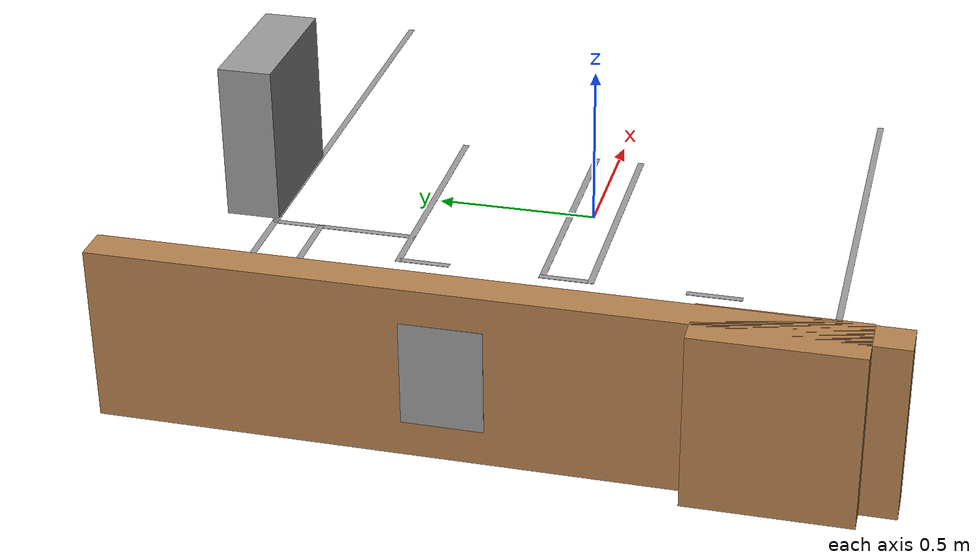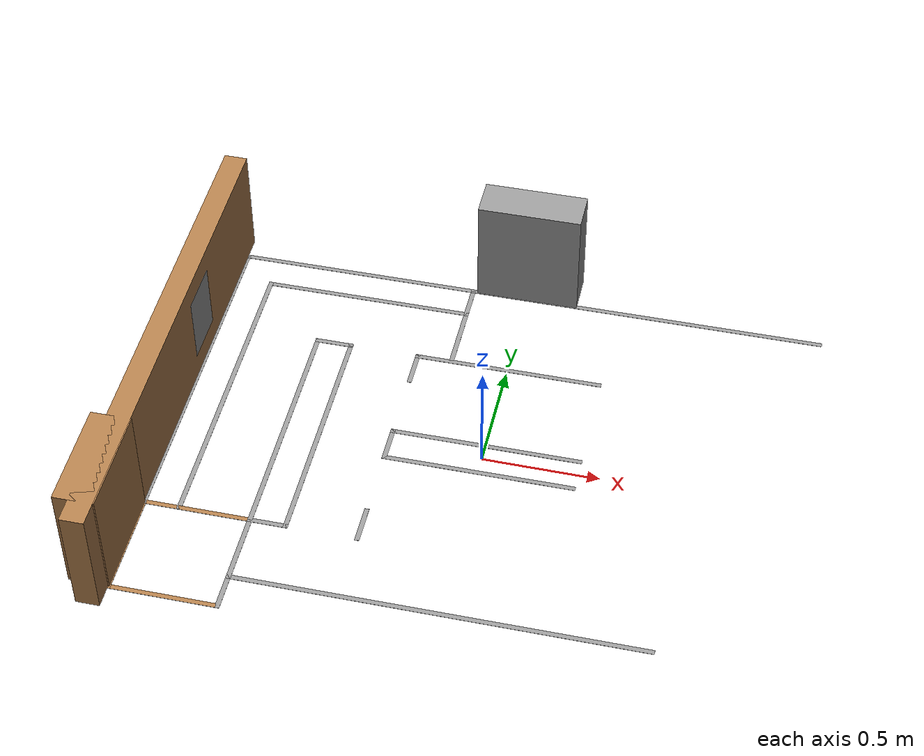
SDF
<sdf version="1.6">
 <model name="Map_2.0_0">
  <link name="Door_2">
   <pose>-1.38 -0.75 0 0 0 -1.56849</pose>
   <inertial>
    <mass>1</mass>
    <inertia><ixx>1</ixx><ixy>0</ixy><ixz>0</ixz><iyy>1</iyy><iyz>0</iyz><izz>1</izz></inertia>
   </inertial>
   <visual name="Door_2_Visual">
    <pose>0 0 0.25 0 -0 0</pose>
    <geometry><box><size>0.45 0.17 0.5</size></box></geometry>
    <material>
     <script><uri>file://media/materials/scripts/gazebo.material</uri><name>Gazebo/Wood</name></script>
     <shader type="pixel"><normal_map>__default__</normal_map></shader>
     <ambient>0 0 0 1</ambient>
     <diffuse>0.7 0.7 0.7 1</diffuse>
     <specular>0.01 0.01 0.01 1</specular>
     <emissive>0 0 0 1</emissive>
    </material>
   </visual>
   <collision name="Door_2_Collision">
    <pose>0 0 0.25 0 -0 0</pose>
    <geometry><box><size>0.45 0.17 0.5</size></box></geometry>
    <surface>
     <friction>
      <ode><mu>1</mu><mu2>1</mu2><fdir1>0 0 0</fdir1><slip1>0</slip1><slip2>0</slip2></ode>
      <torsional>
       <coefficient>1</coefficient>
       <patch_radius>0</patch_radius>
       <surface_radius>0</surface_radius>
       <use_patch_radius>1</use_patch_radius>
       <ode><slip>0</slip></ode>
      </torsional>
     </friction>
     <bounce><restitution_coefficient>0</restitution_coefficient><threshold>1e+06</threshold></bounce>
     <contact>
      <collide_without_contact>0</collide_without_contact>
      <collide_without_contact_bitmask>1</collide_without_contact_bitmask>
      <collide_bitmask>1</collide_bitmask>
      <ode>
       <soft_cfm>0</soft_cfm>
       <soft_erp>0.2</soft_erp>
       <kp>1e+13</kp>
       <kd>1</kd>
       <max_vel>0.01</max_vel>
       <min_depth>0</min_depth>
      </ode>
      <bullet>
       <split_impulse>1</split_impulse>
       <split_impulse_penetration_threshold>-0.01</split_impulse_penetration_threshold>
       <soft_cfm>0</soft_cfm>
       <soft_erp>0.2</soft_erp>
       <kp>1e+13</kp>
       <kd>1</kd>
      </bullet>
     </contact>
    </surface>
   </collision>
  </link>
  <link name="Door_5">
   <pose>-0.005 1.055 0 0 0 -3.13908</pose>
   <visual name="Door_5_Visual">
    <pose>0 0 0.25 0 -0 0</pose>
    <geometry><box><size>0.45 0.17 0.5</size></box></geometry>
    <material>
     <script><uri>file://media/materials/scripts/gazebo.material</uri><name>Gazebo/Grey</name></script>
     <shader type="pixel"/>
     <ambient>0.3 0.3 0.3 1</ambient>
     <diffuse>0.7 0.7 0.7 1</diffuse>
     <specular>0.01 0.01 0.01 1</specular>
     <emissive>0 0 0 1</emissive>
    </material>
   </visual>
   <collision name="Door_5_Collision">
    <pose>0 0 0.25 0 -0 0</pose>
    <geometry><box><size>0.45 0.17 0.5</size></box></geometry>
    <surface>
     <friction>
      <ode><mu>1</mu><mu2>1</mu2><fdir1>0 0 0</fdir1><slip1>0</slip1><slip2>0</slip2></ode>
      <torsional>
       <coefficient>1</coefficient>
       <patch_radius>0</patch_radius>
       <surface_radius>0</surface_radius>
       <use_patch_radius>1</use_patch_radius>
       <ode><slip>0</slip></ode>
      </torsional>
     </friction>
     <bounce><restitution_coefficient>0</restitution_coefficient><threshold>1e+06</threshold></bounce>
     <contact>
      <collide_without_contact>0</collide_without_contact>
      <collide_without_contact_bitmask>1</collide_without_contact_bitmask>
      <collide_bitmask>1</collide_bitmask>
      <ode>
       <soft_cfm>0</soft_cfm>
       <soft_erp>0.2</soft_erp>
       <kp>1e+13</kp>
       <kd>1</kd>
       <max_vel>0.01</max_vel>
       <min_depth>0</min_depth>
      </ode>
      <bullet>
       <split_impulse>1</split_impulse>
       <split_impulse_penetration_threshold>-0.01</split_impulse_penetration_threshold>
       <soft_cfm>0</soft_cfm>
       <soft_erp>0.2</soft_erp>
       <kp>1e+13</kp>
       <kd>1</kd>
      </bullet>
     </contact>
    </surface>
   </collision>
  </link>
  <link name="Wall_0">
   <pose>-1.075 -0.975 0 0 -0 0</pose>
   <visual name="Wall_0_Visual">
    <geometry><box><size>0.47 0.02 0.001</size></box></geometry>
    <material>
     <script><uri>file://media/materials/scripts/gazebo.material</uri><name>Gazebo/Wood</name></script>
     <ambient>1 0.835294 0 1</ambient>
     <shader type="pixel"/>
     <diffuse>1 1 1 1</diffuse>
     <specular>0.2 0.2 0.2 1</specular>
     <emissive>0 0 0 1</emissive>
    </material>
    <meta><layer>0</layer></meta>
   </visual>
   <collision name="Wall_0_Collision">
    <geometry><box><size>0.47 0.02 0.001</size></box></geometry>
    <surface>
     <friction>
      <ode><mu>1</mu><mu2>1</mu2><fdir1>0 0 0</fdir1><slip1>0</slip1><slip2>0</slip2></ode>
      <torsional>
       <coefficient>1</coefficient>
       <patch_radius>0</patch_radius>
       <surface_radius>0</surface_radius>
       <use_patch_radius>1</use_patch_radius>
       <ode><slip>0</slip></ode>
      </torsional>
     </friction>
     <bounce><restitution_coefficient>0</restitution_coefficient><threshold>1e+06</threshold></bounce>
     <contact>
      <collide_without_contact>0</collide_without_contact>
      <collide_without_contact_bitmask>1</collide_without_contact_bitmask>
      <collide_bitmask>1</collide_bitmask>
      <ode>
       <soft_cfm>0</soft_cfm>
       <soft_erp>0.2</soft_erp>
       <kp>1e+13</kp>
       <kd>1</kd>
       <max_vel>0.01</max_vel>
       <min_depth>0</min_depth>
      </ode>
      <bullet>
       <split_impulse>1</split_impulse>
       <split_impulse_penetration_threshold>-0.01</split_impulse_penetration_threshold>
       <soft_cfm>0</soft_cfm>
       <soft_erp>0.2</soft_erp>
       <kp>1e+13</kp>
       <kd>1</kd>
      </bullet>
     </contact>
    </surface>
   </collision>
  </link>
  <link name="Wall_15">
   <pose>-1.15 0.15 0 0 -0 1.5708</pose>
   <visual name="Wall_15_Visual">
    <geometry><box><size>1.37 0.02 0.001</size></box></geometry>
    <material>
     <script><uri>file://media/materials/scripts/gazebo.material</uri><name>Gazebo/Grey</name></script>
     <ambient>1 1 1 1</ambient>
     <shader type="pixel"/>
     <diffuse>0.7 0.7 0.7 1</diffuse>
     <specular>0.01 0.01 0.01 1</specular>
     <emissive>0 0 0 1</emissive>
    </material>
    <meta><layer>0</layer></meta>
   </visual>
   <collision name="Wall_15_Collision">
    <geometry><box><size>1.37 0.02 0.001</size></box></geometry>
    <surface>
     <friction>
      <ode><mu>1</mu><mu2>1</mu2><fdir1>0 0 0</fdir1><slip1>0</slip1><slip2>0</slip2></ode>
      <torsional>
       <coefficient>1</coefficient>
       <patch_radius>0</patch_radius>
       <surface_radius>0</surface_radius>
       <use_patch_radius>1</use_patch_radius>
       <ode><slip>0</slip></ode>
      </torsional>
     </friction>
     <bounce><restitution_coefficient>0</restitution_coefficient><threshold>1e+06</threshold></bounce>
     <contact>
      <collide_without_contact>0</collide_without_contact>
      <collide_without_contact_bitmask>1</collide_without_contact_bitmask>
      <collide_bitmask>1</collide_bitmask>
      <ode>
       <soft_cfm>0</soft_cfm>
       <soft_erp>0.2</soft_erp>
       <kp>1e+13</kp>
       <kd>1</kd>
       <max_vel>0.01</max_vel>
       <min_depth>0</min_depth>
      </ode>
      <bullet>
       <split_impulse>1</split_impulse>
       <split_impulse_penetration_threshold>-0.01</split_impulse_penetration_threshold>
       <soft_cfm>0</soft_cfm>
       <soft_erp>0.2</soft_erp>
       <kp>1e+13</kp>
       <kd>1</kd>
      </bullet>
     </contact>
    </surface>
   </collision>
  </link>
  <link name="Wall_19">
   <pose>-0.85 0 0 0 -0 1.5708</pose>
   <visual name="Wall_19_Visual">
    <geometry><box><size>1.07 0.02 0.001</size></box></geometry>
    <material>
     <script><uri>file://media/materials/scripts/gazebo.material</uri><name>Gazebo/Grey</name></script>
     <ambient>1 1 1 1</ambient>
     <shader type="pixel"/>
     <diffuse>0.7 0.7 0.7 1</diffuse>
     <specular>0.01 0.01 0.01 1</specular>
     <emissive>0 0 0 1</emissive>
    </material>
    <meta><layer>0</layer></meta>
   </visual>
   <collision name="Wall_19_Collision">
    <geometry><box><size>1.07 0.02 0.001</size></box></geometry>
    <surface>
     <friction>
      <ode><mu>1</mu><mu2>1</mu2><fdir1>0 0 0</fdir1><slip1>0</slip1><slip2>0</slip2></ode>
      <torsional>
       <coefficient>1</coefficient>
       <patch_radius>0</patch_radius>
       <surface_radius>0</surface_radius>
       <use_patch_radius>1</use_patch_radius>
       <ode><slip>0</slip></ode>
      </torsional>
     </friction>
     <bounce><restitution_coefficient>0</restitution_coefficient><threshold>1e+06</threshold></bounce>
     <contact>
      <collide_without_contact>0</collide_without_contact>
      <collide_without_contact_bitmask>1</collide_without_contact_bitmask>
      <collide_bitmask>1</collide_bitmask>
      <ode>
       <soft_cfm>0</soft_cfm>
       <soft_erp>0.2</soft_erp>
       <kp>1e+13</kp>
       <kd>1</kd>
       <max_vel>0.01</max_vel>
       <min_depth>0</min_depth>
      </ode>
      <bullet>
       <split_impulse>1</split_impulse>
       <split_impulse_penetration_threshold>-0.01</split_impulse_penetration_threshold>
       <soft_cfm>0</soft_cfm>
       <soft_erp>0.2</soft_erp>
       <kp>1e+13</kp>
       <kd>1</kd>
      </bullet>
     </contact>
    </surface>
   </collision>
  </link>
  <link name="Wall_2">
   <pose>-0.85 -0.75 0 0 -0 1.5708</pose>
   <visual name="Wall_2_Visual">
    <geometry><box><size>0.47 0.02 0.001</size></box></geometry>
    <material>
     <script><uri>file://media/materials/scripts/gazebo.material</uri><name>Gazebo/Grey</name></script>
     <ambient>1 1 1 1</ambient>
     <shader type="pixel"/>
     <diffuse>0.7 0.7 0.7 1</diffuse>
     <specular>0.01 0.01 0.01 1</specular>
     <emissive>0 0 0 1</emissive>
    </material>
    <meta><layer>0</layer></meta>
   </visual>
   <collision name="Wall_2_Collision">
    <geometry><box><size>0.47 0.02 0.001</size></box></geometry>
    <surface>
     <friction>
      <ode><mu>1</mu><mu2>1</mu2><fdir1>0 0 0</fdir1><slip1>0</slip1><slip2>0</slip2></ode>
      <torsional>
       <coefficient>1</coefficient>
       <patch_radius>0</patch_radius>
       <surface_radius>0</surface_radius>
       <use_patch_radius>1</use_patch_radius>
       <ode><slip>0</slip></ode>
      </torsional>
     </friction>
     <bounce><restitution_coefficient>0</restitution_coefficient><threshold>1e+06</threshold></bounce>
     <contact>
      <collide_without_contact>0</collide_without_contact>
      <collide_without_contact_bitmask>1</collide_without_contact_bitmask>
      <collide_bitmask>1</collide_bitmask>
      <ode>
       <soft_cfm>0</soft_cfm>
       <soft_erp>0.2</soft_erp>
       <kp>1e+13</kp>
       <kd>1</kd>
       <max_vel>0.01</max_vel>
       <min_depth>0</min_depth>
      </ode>
      <bullet>
       <split_impulse>1</split_impulse>
       <split_impulse_penetration_threshold>-0.01</split_impulse_penetration_threshold>
       <soft_cfm>0</soft_cfm>
       <soft_erp>0.2</soft_erp>
       <kp>1e+13</kp>
       <kd>1</kd>
      </bullet>
     </contact>
    </surface>
   </collision>
  </link>
  <link name="Wall_21">
   <pose>-0.775 -0.525 0 0 -0 0</pose>
   <visual name="Wall_21_Visual">
    <geometry><box><size>0.17 0.02 0.001</size></box></geometry>
    <material>
     <script><uri>file://media/materials/scripts/gazebo.material</uri><name>Gazebo/Grey</name></script>
     <ambient>1 1 1 1</ambient>
     <shader type="pixel"/>
     <diffuse>0.7 0.7 0.7 1</diffuse>
     <specular>0.01 0.01 0.01 1</specular>
     <emissive>0 0 0 1</emissive>
    </material>
    <meta><layer>0</layer></meta>
   </visual>
   <collision name="Wall_21_Collision">
    <geometry><box><size>0.17 0.02 0.001</size></box></geometry>
    <surface>
     <friction>
      <ode><mu>1</mu><mu2>1</mu2><fdir1>0 0 0</fdir1><slip1>0</slip1><slip2>0</slip2></ode>
      <torsional>
       <coefficient>1</coefficient>
       <patch_radius>0</patch_radius>
       <surface_radius>0</surface_radius>
       <use_patch_radius>1</use_patch_radius>
       <ode><slip>0</slip></ode>
      </torsional>
     </friction>
     <bounce><restitution_coefficient>0</restitution_coefficient><threshold>1e+06</threshold></bounce>
     <contact>
      <collide_without_contact>0</collide_without_contact>
      <collide_without_contact_bitmask>1</collide_without_contact_bitmask>
      <collide_bitmask>1</collide_bitmask>
      <ode>
       <soft_cfm>0</soft_cfm>
       <soft_erp>0.2</soft_erp>
       <kp>1e+13</kp>
       <kd>1</kd>
       <max_vel>0.01</max_vel>
       <min_depth>0</min_depth>
      </ode>
      <bullet>
       <split_impulse>1</split_impulse>
       <split_impulse_penetration_threshold>-0.01</split_impulse_penetration_threshold>
       <soft_cfm>0</soft_cfm>
       <soft_erp>0.2</soft_erp>
       <kp>1e+13</kp>
       <kd>1</kd>
      </bullet>
     </contact>
    </surface>
   </collision>
  </link>
  <link name="Wall_23">
   <pose>-0.7 0 0 0 -0 1.5708</pose>
   <visual name="Wall_23_Visual">
    <geometry><box><size>1.07 0.02 0.001</size></box></geometry>
    <material>
     <script><uri>file://media/materials/scripts/gazebo.material</uri><name>Gazebo/Grey</name></script>
     <ambient>1 1 1 1</ambient>
     <shader type="pixel"/>
     <diffuse>0.7 0.7 0.7 1</diffuse>
     <specular>0.01 0.01 0.01 1</specular>
     <emissive>0 0 0 1</emissive>
    </material>
    <meta><layer>0</layer></meta>
   </visual>
   <collision name="Wall_23_Collision">
    <geometry><box><size>1.07 0.02 0.001</size></box></geometry>
    <surface>
     <friction>
      <ode><mu>1</mu><mu2>1</mu2><fdir1>0 0 0</fdir1><slip1>0</slip1><slip2>0</slip2></ode>
      <torsional>
       <coefficient>1</coefficient>
       <patch_radius>0</patch_radius>
       <surface_radius>0</surface_radius>
       <use_patch_radius>1</use_patch_radius>
       <ode><slip>0</slip></ode>
      </torsional>
     </friction>
     <bounce><restitution_coefficient>0</restitution_coefficient><threshold>1e+06</threshold></bounce>
     <contact>
      <collide_without_contact>0</collide_without_contact>
      <collide_without_contact_bitmask>1</collide_without_contact_bitmask>
      <collide_bitmask>1</collide_bitmask>
      <ode>
       <soft_cfm>0</soft_cfm>
       <soft_erp>0.2</soft_erp>
       <kp>1e+13</kp>
       <kd>1</kd>
       <max_vel>0.01</max_vel>
       <min_depth>0</min_depth>
      </ode>
      <bullet>
       <split_impulse>1</split_impulse>
       <split_impulse_penetration_threshold>-0.01</split_impulse_penetration_threshold>
       <soft_cfm>0</soft_cfm>
       <soft_erp>0.2</soft_erp>
       <kp>1e+13</kp>
       <kd>1</kd>
      </bullet>
     </contact>
    </surface>
   </collision>
  </link>
  <link name="Wall_25">
   <pose>0 -0.825 0 0 -0 0</pose>
   <visual name="Wall_25_Visual">
    <geometry><box><size>1.72 0.02 0.001</size></box></geometry>
    <material>
     <script><uri>file://media/materials/scripts/gazebo.material</uri><name>Gazebo/Grey</name></script>
     <ambient>1 1 1 1</ambient>
     <shader type="pixel"/>
     <diffuse>0.7 0.7 0.7 1</diffuse>
     <specular>0.01 0.01 0.01 1</specular>
     <emissive>0 0 0 1</emissive>
    </material>
    <meta><layer>0</layer></meta>
   </visual>
   <collision name="Wall_25_Collision">
    <geometry><box><size>1.72 0.02 0.001</size></box></geometry>
    <surface>
     <friction>
      <ode><mu>1</mu><mu2>1</mu2><fdir1>0 0 0</fdir1><slip1>0</slip1><slip2>0</slip2></ode>
      <torsional>
       <coefficient>1</coefficient>
       <patch_radius>0</patch_radius>
       <surface_radius>0</surface_radius>
       <use_patch_radius>1</use_patch_radius>
       <ode><slip>0</slip></ode>
      </torsional>
     </friction>
     <bounce><restitution_coefficient>0</restitution_coefficient><threshold>1e+06</threshold></bounce>
     <contact>
      <collide_without_contact>0</collide_without_contact>
      <collide_without_contact_bitmask>1</collide_without_contact_bitmask>
      <collide_bitmask>1</collide_bitmask>
      <ode>
       <soft_cfm>0</soft_cfm>
       <soft_erp>0.2</soft_erp>
       <kp>1e+13</kp>
       <kd>1</kd>
       <max_vel>0.01</max_vel>
       <min_depth>0</min_depth>
      </ode>
      <bullet>
       <split_impulse>1</split_impulse>
       <split_impulse_penetration_threshold>-0.01</split_impulse_penetration_threshold>
       <soft_cfm>0</soft_cfm>
       <soft_erp>0.2</soft_erp>
       <kp>1e+13</kp>
       <kd>1</kd>
      </bullet>
     </contact>
    </surface>
   </collision>
  </link>
  <link name="Wall_29">
   <pose>0 0.975 0 0 -0 0</pose>
   <visual name="Wall_29_Visual">
    <geometry><box><size>2.62 0.02 0.001</size></box></geometry>
    <material>
     <script><uri>file://media/materials/scripts/gazebo.material</uri><name>Gazebo/Grey</name></script>
     <ambient>1 1 1 1</ambient>
     <shader type="pixel"/>
     <diffuse>0.7 0.7 0.7 1</diffuse>
     <specular>0.01 0.01 0.01 1</specular>
     <emissive>0 0 0 1</emissive>
    </material>
    <meta><layer>0</layer></meta>
   </visual>
   <collision name="Wall_29_Collision">
    <geometry><box><size>2.62 0.02 0.001</size></box></geometry>
    <surface>
     <friction>
      <ode><mu>1</mu><mu2>1</mu2><fdir1>0 0 0</fdir1><slip1>0</slip1><slip2>0</slip2></ode>
      <torsional>
       <coefficient>1</coefficient>
       <patch_radius>0</patch_radius>
       <surface_radius>0</surface_radius>
       <use_patch_radius>1</use_patch_radius>
       <ode><slip>0</slip></ode>
      </torsional>
     </friction>
     <bounce><restitution_coefficient>0</restitution_coefficient><threshold>1e+06</threshold></bounce>
     <contact>
      <collide_without_contact>0</collide_without_contact>
      <collide_without_contact_bitmask>1</collide_without_contact_bitmask>
      <collide_bitmask>1</collide_bitmask>
      <ode>
       <soft_cfm>0</soft_cfm>
       <soft_erp>0.2</soft_erp>
       <kp>1e+13</kp>
       <kd>1</kd>
       <max_vel>0.01</max_vel>
       <min_depth>0</min_depth>
      </ode>
      <bullet>
       <split_impulse>1</split_impulse>
       <split_impulse_penetration_threshold>-0.01</split_impulse_penetration_threshold>
       <soft_cfm>0</soft_cfm>
       <soft_erp>0.2</soft_erp>
       <kp>1e+13</kp>
       <kd>1</kd>
      </bullet>
     </contact>
    </surface>
   </collision>
  </link>
  <link name="Wall_31">
   <pose>-0.7 0.825 0 0 -0 0</pose>
   <visual name="Wall_31_Visual">
    <geometry><box><size>0.92 0.02 0.001</size></box></geometry>
    <material>
     <script><uri>file://media/materials/scripts/gazebo.material</uri><name>Gazebo/Grey</name></script>
     <ambient>1 1 1 1</ambient>
     <shader type="pixel"/>
     <diffuse>0.7 0.7 0.7 1</diffuse>
     <specular>0.01 0.01 0.01 1</specular>
     <emissive>0 0 0 1</emissive>
    </material>
    <meta><layer>0</layer></meta>
   </visual>
   <collision name="Wall_31_Collision">
    <geometry><box><size>0.92 0.02 0.001</size></box></geometry>
    <surface>
     <friction>
      <ode><mu>1</mu><mu2>1</mu2><fdir1>0 0 0</fdir1><slip1>0</slip1><slip2>0</slip2></ode>
      <torsional>
       <coefficient>1</coefficient>
       <patch_radius>0</patch_radius>
       <surface_radius>0</surface_radius>
       <use_patch_radius>1</use_patch_radius>
       <ode><slip>0</slip></ode>
      </torsional>
     </friction>
     <bounce><restitution_coefficient>0</restitution_coefficient><threshold>1e+06</threshold></bounce>
     <contact>
      <collide_without_contact>0</collide_without_contact>
      <collide_without_contact_bitmask>1</collide_without_contact_bitmask>
      <collide_bitmask>1</collide_bitmask>
      <ode>
       <soft_cfm>0</soft_cfm>
       <soft_erp>0.2</soft_erp>
       <kp>1e+13</kp>
       <kd>1</kd>
       <max_vel>0.01</max_vel>
       <min_depth>0</min_depth>
      </ode>
      <bullet>
       <split_impulse>1</split_impulse>
       <split_impulse_penetration_threshold>-0.01</split_impulse_penetration_threshold>
       <soft_cfm>0</soft_cfm>
       <soft_erp>0.2</soft_erp>
       <kp>1e+13</kp>
       <kd>1</kd>
      </bullet>
     </contact>
    </surface>
   </collision>
  </link>
  <link name="Wall_33">
   <pose>-0.25 0.75 0 0 0 -1.5708</pose>
   <visual name="Wall_33_Visual">
    <geometry><box><size>0.47 0.02 0.001</size></box></geometry>
    <material>
     <script><uri>file://media/materials/scripts/gazebo.material</uri><name>Gazebo/Grey</name></script>
     <ambient>1 1 1 1</ambient>
     <shader type="pixel"/>
     <diffuse>0.7 0.7 0.7 1</diffuse>
     <specular>0.01 0.01 0.01 1</specular>
     <emissive>0 0 0 1</emissive>
    </material>
    <meta><layer>0</layer></meta>
   </visual>
   <collision name="Wall_33_Collision">
    <geometry><box><size>0.47 0.02 0.001</size></box></geometry>
    <surface>
     <friction>
      <ode><mu>1</mu><mu2>1</mu2><fdir1>0 0 0</fdir1><slip1>0</slip1><slip2>0</slip2></ode>
      <torsional>
       <coefficient>1</coefficient>
       <patch_radius>0</patch_radius>
       <surface_radius>0</surface_radius>
       <use_patch_radius>1</use_patch_radius>
       <ode><slip>0</slip></ode>
      </torsional>
     </friction>
     <bounce><restitution_coefficient>0</restitution_coefficient><threshold>1e+06</threshold></bounce>
     <contact>
      <collide_without_contact>0</collide_without_contact>
      <collide_without_contact_bitmask>1</collide_without_contact_bitmask>
      <collide_bitmask>1</collide_bitmask>
      <ode>
       <soft_cfm>0</soft_cfm>
       <soft_erp>0.2</soft_erp>
       <kp>1e+13</kp>
       <kd>1</kd>
       <max_vel>0.01</max_vel>
       <min_depth>0</min_depth>
      </ode>
      <bullet>
       <split_impulse>1</split_impulse>
       <split_impulse_penetration_threshold>-0.01</split_impulse_penetration_threshold>
       <soft_cfm>0</soft_cfm>
       <soft_erp>0.2</soft_erp>
       <kp>1e+13</kp>
       <kd>1</kd>
      </bullet>
     </contact>
    </surface>
   </collision>
  </link>
  <link name="Wall_35">
   <pose>-0.775 0.525 0 0 -0 0</pose>
   <visual name="Wall_35_Visual">
    <geometry><box><size>0.17 0.02 0.001</size></box></geometry>
    <material>
     <script><uri>file://media/materials/scripts/gazebo.material</uri><name>Gazebo/Grey</name></script>
     <ambient>1 1 1 1</ambient>
     <shader type="pixel"/>
     <diffuse>0.7 0.7 0.7 1</diffuse>
     <specular>0.01 0.01 0.01 1</specular>
     <emissive>0 0 0 1</emissive>
    </material>
    <meta><layer>0</layer></meta>
   </visual>
   <collision name="Wall_35_Collision">
    <geometry><box><size>0.17 0.02 0.001</size></box></geometry>
    <surface>
     <friction>
      <ode><mu>1</mu><mu2>1</mu2><fdir1>0 0 0</fdir1><slip1>0</slip1><slip2>0</slip2></ode>
      <torsional>
       <coefficient>1</coefficient>
       <patch_radius>0</patch_radius>
       <surface_radius>0</surface_radius>
       <use_patch_radius>1</use_patch_radius>
       <ode><slip>0</slip></ode>
      </torsional>
     </friction>
     <bounce><restitution_coefficient>0</restitution_coefficient><threshold>1e+06</threshold></bounce>
     <contact>
      <collide_without_contact>0</collide_without_contact>
      <collide_without_contact_bitmask>1</collide_without_contact_bitmask>
      <collide_bitmask>1</collide_bitmask>
      <ode>
       <soft_cfm>0</soft_cfm>
       <soft_erp>0.2</soft_erp>
       <kp>1e+13</kp>
       <kd>1</kd>
       <max_vel>0.01</max_vel>
       <min_depth>0</min_depth>
      </ode>
      <bullet>
       <split_impulse>1</split_impulse>
       <split_impulse_penetration_threshold>-0.01</split_impulse_penetration_threshold>
       <soft_cfm>0</soft_cfm>
       <soft_erp>0.2</soft_erp>
       <kp>1e+13</kp>
       <kd>1</kd>
      </bullet>
     </contact>
    </surface>
   </collision>
  </link>
  <link name="Wall_37">
   <pose>0 0.525 0 0 -0 0</pose>
   <visual name="Wall_37_Visual">
    <geometry><box><size>0.82 0.02 0.001</size></box></geometry>
    <material>
     <script><uri>file://media/materials/scripts/gazebo.material</uri><name>Gazebo/Grey</name></script>
     <ambient>1 1 1 1</ambient>
     <shader type="pixel"/>
     <diffuse>0.7 0.7 0.7 1</diffuse>
     <specular>0.01 0.01 0.01 1</specular>
     <emissive>0 0 0 1</emissive>
    </material>
    <meta><layer>0</layer></meta>
   </visual>
   <collision name="Wall_37_Collision">
    <geometry><box><size>0.82 0.02 0.001</size></box></geometry>
    <surface>
     <friction>
      <ode><mu>1</mu><mu2>1</mu2><fdir1>0 0 0</fdir1><slip1>0</slip1><slip2>0</slip2></ode>
      <torsional>
       <coefficient>1</coefficient>
       <patch_radius>0</patch_radius>
       <surface_radius>0</surface_radius>
       <use_patch_radius>1</use_patch_radius>
       <ode><slip>0</slip></ode>
      </torsional>
     </friction>
     <bounce><restitution_coefficient>0</restitution_coefficient><threshold>1e+06</threshold></bounce>
     <contact>
      <collide_without_contact>0</collide_without_contact>
      <collide_without_contact_bitmask>1</collide_without_contact_bitmask>
      <collide_bitmask>1</collide_bitmask>
      <ode>
       <soft_cfm>0</soft_cfm>
       <soft_erp>0.2</soft_erp>
       <kp>1e+13</kp>
       <kd>1</kd>
       <max_vel>0.01</max_vel>
       <min_depth>0</min_depth>
      </ode>
      <bullet>
       <split_impulse>1</split_impulse>
       <split_impulse_penetration_threshold>-0.01</split_impulse_penetration_threshold>
       <soft_cfm>0</soft_cfm>
       <soft_erp>0.2</soft_erp>
       <kp>1e+13</kp>
       <kd>1</kd>
      </bullet>
     </contact>
    </surface>
   </collision>
  </link>
  <link name="Wall_4">
   <pose>-1.3 -0.75 0 0 -0 1.5708</pose>
   <visual name="Wall_4_Visual">
    <geometry><box><size>0.47 0.02 0.001</size></box></geometry>
    <material>
     <script><uri>file://media/materials/scripts/gazebo.material</uri><name>Gazebo/Wood</name></script>
     <ambient>1 0.764706 0.305882 1</ambient>
     <shader type="pixel"/>
     <diffuse>1 1 1 1</diffuse>
     <specular>0.2 0.2 0.2 1</specular>
     <emissive>0 0 0 1</emissive>
    </material>
    <meta><layer>0</layer></meta>
   </visual>
   <collision name="Wall_4_Collision">
    <geometry><box><size>0.47 0.02 0.001</size></box></geometry>
    <surface>
     <friction>
      <ode><mu>1</mu><mu2>1</mu2><fdir1>0 0 0</fdir1><slip1>0</slip1><slip2>0</slip2></ode>
      <torsional>
       <coefficient>1</coefficient>
       <patch_radius>0</patch_radius>
       <surface_radius>0</surface_radius>
       <use_patch_radius>1</use_patch_radius>
       <ode><slip>0</slip></ode>
      </torsional>
     </friction>
     <bounce><restitution_coefficient>0</restitution_coefficient><threshold>1e+06</threshold></bounce>
     <contact>
      <collide_without_contact>0</collide_without_contact>
      <collide_without_contact_bitmask>1</collide_without_contact_bitmask>
      <collide_bitmask>1</collide_bitmask>
      <ode>
       <soft_cfm>0</soft_cfm>
       <soft_erp>0.2</soft_erp>
       <kp>1e+13</kp>
       <kd>1</kd>
       <max_vel>0.01</max_vel>
       <min_depth>0</min_depth>
      </ode>
      <bullet>
       <split_impulse>1</split_impulse>
       <split_impulse_penetration_threshold>-0.01</split_impulse_penetration_threshold>
       <soft_cfm>0</soft_cfm>
       <soft_erp>0.2</soft_erp>
       <kp>1e+13</kp>
       <kd>1</kd>
      </bullet>
     </contact>
    </surface>
   </collision>
  </link>
  <link name="Wall_41">
   <pose>0 0.075 0 0 -0 0</pose>
   <visual name="Wall_41_Visual">
    <geometry><box><size>0.82 0.02 0.001</size></box></geometry>
    <material>
     <script><uri>file://media/materials/scripts/gazebo.material</uri><name>Gazebo/Grey</name></script>
     <ambient>1 1 1 1</ambient>
     <shader type="pixel"/>
     <diffuse>0.7 0.7 0.7 1</diffuse>
     <specular>0.01 0.01 0.01 1</specular>
     <emissive>0 0 0 1</emissive>
    </material>
    <meta><layer>0</layer></meta>
   </visual>
   <collision name="Wall_41_Collision">
    <geometry><box><size>0.82 0.02 0.001</size></box></geometry>
    <surface>
     <friction>
      <ode><mu>1</mu><mu2>1</mu2><fdir1>0 0 0</fdir1><slip1>0</slip1><slip2>0</slip2></ode>
      <torsional>
       <coefficient>1</coefficient>
       <patch_radius>0</patch_radius>
       <surface_radius>0</surface_radius>
       <use_patch_radius>1</use_patch_radius>
       <ode><slip>0</slip></ode>
      </torsional>
     </friction>
     <bounce><restitution_coefficient>0</restitution_coefficient><threshold>1e+06</threshold></bounce>
     <contact>
      <collide_without_contact>0</collide_without_contact>
      <collide_without_contact_bitmask>1</collide_without_contact_bitmask>
      <collide_bitmask>1</collide_bitmask>
      <ode>
       <soft_cfm>0</soft_cfm>
       <soft_erp>0.2</soft_erp>
       <kp>1e+13</kp>
       <kd>1</kd>
       <max_vel>0.01</max_vel>
       <min_depth>0</min_depth>
      </ode>
      <bullet>
       <split_impulse>1</split_impulse>
       <split_impulse_penetration_threshold>-0.01</split_impulse_penetration_threshold>
       <soft_cfm>0</soft_cfm>
       <soft_erp>0.2</soft_erp>
       <kp>1e+13</kp>
       <kd>1</kd>
      </bullet>
     </contact>
    </surface>
   </collision>
  </link>
  <link name="Wall_43">
   <pose>0 -0.075 0 0 -0 0</pose>
   <visual name="Wall_43_Visual">
    <geometry><box><size>0.82 0.02 0.001</size></box></geometry>
    <material>
     <script><uri>file://media/materials/scripts/gazebo.material</uri><name>Gazebo/Grey</name></script>
     <ambient>1 1 1 1</ambient>
     <shader type="pixel"/>
     <diffuse>0.7 0.7 0.7 1</diffuse>
     <specular>0.01 0.01 0.01 1</specular>
     <emissive>0 0 0 1</emissive>
    </material>
    <meta><layer>0</layer></meta>
   </visual>
   <collision name="Wall_43_Collision">
    <geometry><box><size>0.82 0.02 0.001</size></box></geometry>
    <surface>
     <friction>
      <ode><mu>1</mu><mu2>1</mu2><fdir1>0 0 0</fdir1><slip1>0</slip1><slip2>0</slip2></ode>
      <torsional>
       <coefficient>1</coefficient>
       <patch_radius>0</patch_radius>
       <surface_radius>0</surface_radius>
       <use_patch_radius>1</use_patch_radius>
       <ode><slip>0</slip></ode>
      </torsional>
     </friction>
     <bounce><restitution_coefficient>0</restitution_coefficient><threshold>1e+06</threshold></bounce>
     <contact>
      <collide_without_contact>0</collide_without_contact>
      <collide_without_contact_bitmask>1</collide_without_contact_bitmask>
      <collide_bitmask>1</collide_bitmask>
      <ode>
       <soft_cfm>0</soft_cfm>
       <soft_erp>0.2</soft_erp>
       <kp>1e+13</kp>
       <kd>1</kd>
       <max_vel>0.01</max_vel>
       <min_depth>0</min_depth>
      </ode>
      <bullet>
       <split_impulse>1</split_impulse>
       <split_impulse_penetration_threshold>-0.01</split_impulse_penetration_threshold>
       <soft_cfm>0</soft_cfm>
       <soft_erp>0.2</soft_erp>
       <kp>1e+13</kp>
       <kd>1</kd>
      </bullet>
     </contact>
    </surface>
   </collision>
  </link>
  <link name="Wall_45">
   <pose>-0.4 0.45 0 0 0 -1.5708</pose>
   <visual name="Wall_45_Visual">
    <geometry><box><size>0.17 0.02 0.001</size></box></geometry>
    <material>
     <script><uri>file://media/materials/scripts/gazebo.material</uri><name>Gazebo/Grey</name></script>
     <ambient>1 1 1 1</ambient>
     <shader type="pixel"/>
     <diffuse>0.7 0.7 0.7 1</diffuse>
     <specular>0.01 0.01 0.01 1</specular>
     <emissive>0 0 0 1</emissive>
    </material>
    <meta><layer>0</layer></meta>
   </visual>
   <collision name="Wall_45_Collision">
    <geometry><box><size>0.17 0.02 0.001</size></box></geometry>
    <surface>
     <friction>
      <ode><mu>1</mu><mu2>1</mu2><fdir1>0 0 0</fdir1><slip1>0</slip1><slip2>0</slip2></ode>
      <torsional>
       <coefficient>1</coefficient>
       <patch_radius>0</patch_radius>
       <surface_radius>0</surface_radius>
       <use_patch_radius>1</use_patch_radius>
       <ode><slip>0</slip></ode>
      </torsional>
     </friction>
     <bounce><restitution_coefficient>0</restitution_coefficient><threshold>1e+06</threshold></bounce>
     <contact>
      <collide_without_contact>0</collide_without_contact>
      <collide_without_contact_bitmask>1</collide_without_contact_bitmask>
      <collide_bitmask>1</collide_bitmask>
      <ode>
       <soft_cfm>0</soft_cfm>
       <soft_erp>0.2</soft_erp>
       <kp>1e+13</kp>
       <kd>1</kd>
       <max_vel>0.01</max_vel>
       <min_depth>0</min_depth>
      </ode>
      <bullet>
       <split_impulse>1</split_impulse>
       <split_impulse_penetration_threshold>-0.01</split_impulse_penetration_threshold>
       <soft_cfm>0</soft_cfm>
       <soft_erp>0.2</soft_erp>
       <kp>1e+13</kp>
       <kd>1</kd>
      </bullet>
     </contact>
    </surface>
   </collision>
  </link>
  <link name="Wall_49">
   <pose>-0.4 0 0 0 0 -1.5708</pose>
   <visual name="Wall_49_Visual">
    <geometry><box><size>0.17 0.02 0.001</size></box></geometry>
    <material>
     <script><uri>file://media/materials/scripts/gazebo.material</uri><name>Gazebo/Grey</name></script>
     <ambient>1 1 1 1</ambient>
     <shader type="pixel"/>
     <diffuse>0.7 0.7 0.7 1</diffuse>
     <specular>0.01 0.01 0.01 1</specular>
     <emissive>0 0 0 1</emissive>
    </material>
    <meta><layer>0</layer></meta>
   </visual>
   <collision name="Wall_49_Collision">
    <geometry><box><size>0.17 0.02 0.001</size></box></geometry>
    <surface>
     <friction>
      <ode><mu>1</mu><mu2>1</mu2><fdir1>0 0 0</fdir1><slip1>0</slip1><slip2>0</slip2></ode>
      <torsional>
       <coefficient>1</coefficient>
       <patch_radius>0</patch_radius>
       <surface_radius>0</surface_radius>
       <use_patch_radius>1</use_patch_radius>
       <ode><slip>0</slip></ode>
      </torsional>
     </friction>
     <bounce><restitution_coefficient>0</restitution_coefficient><threshold>1e+06</threshold></bounce>
     <contact>
      <collide_without_contact>0</collide_without_contact>
      <collide_without_contact_bitmask>1</collide_without_contact_bitmask>
      <collide_bitmask>1</collide_bitmask>
      <ode>
       <soft_cfm>0</soft_cfm>
       <soft_erp>0.2</soft_erp>
       <kp>1e+13</kp>
       <kd>1</kd>
       <max_vel>0.01</max_vel>
       <min_depth>0</min_depth>
      </ode>
      <bullet>
       <split_impulse>1</split_impulse>
       <split_impulse_penetration_threshold>-0.01</split_impulse_penetration_threshold>
       <soft_cfm>0</soft_cfm>
       <soft_erp>0.2</soft_erp>
       <kp>1e+13</kp>
       <kd>1</kd>
      </bullet>
     </contact>
    </surface>
   </collision>
  </link>
  <link name="Wall_57">
   <pose>-0.4 -0.45 0 0 0 -1.5708</pose>
   <visual name="Wall_57_Visual">
    <geometry><box><size>0.17 0.02 0.001</size></box></geometry>
    <material>
     <script><uri>file://media/materials/scripts/gazebo.material</uri><name>Gazebo/Grey</name></script>
     <ambient>1 1 1 1</ambient>
     <shader type="pixel"/>
     <diffuse>0.7 0.7 0.7 1</diffuse>
     <specular>0.01 0.01 0.01 1</specular>
     <emissive>0 0 0 1</emissive>
    </material>
    <meta><layer>0</layer></meta>
   </visual>
   <collision name="Wall_57_Collision">
    <geometry><box><size>0.17 0.02 0.001</size></box></geometry>
    <surface>
     <friction>
      <ode><mu>1</mu><mu2>1</mu2><fdir1>0 0 0</fdir1><slip1>0</slip1><slip2>0</slip2></ode>
      <torsional>
       <coefficient>1</coefficient>
       <patch_radius>0</patch_radius>
       <surface_radius>0</surface_radius>
       <use_patch_radius>1</use_patch_radius>
       <ode><slip>0</slip></ode>
      </torsional>
     </friction>
     <bounce><restitution_coefficient>0</restitution_coefficient><threshold>1e+06</threshold></bounce>
     <contact>
      <collide_without_contact>0</collide_without_contact>
      <collide_without_contact_bitmask>1</collide_without_contact_bitmask>
      <collide_bitmask>1</collide_bitmask>
      <ode>
       <soft_cfm>0</soft_cfm>
       <soft_erp>0.2</soft_erp>
       <kp>1e+13</kp>
       <kd>1</kd>
       <max_vel>0.01</max_vel>
       <min_depth>0</min_depth>
      </ode>
      <bullet>
       <split_impulse>1</split_impulse>
       <split_impulse_penetration_threshold>-0.01</split_impulse_penetration_threshold>
       <soft_cfm>0</soft_cfm>
       <soft_erp>0.2</soft_erp>
       <kp>1e+13</kp>
       <kd>1</kd>
      </bullet>
     </contact>
    </surface>
   </collision>
  </link>
  <link name="Wall_7">
   <pose>-1.075 -0.525 0 0 -0 0</pose>
   <visual name="Wall_7_Visual">
    <geometry><box><size>0.47 0.02 0.001</size></box></geometry>
    <material>
     <script><uri>file://media/materials/scripts/gazebo.material</uri><name>Gazebo/Wood</name></script>
     <ambient>1 0.764706 0.305882 1</ambient>
     <shader type="pixel"/>
     <diffuse>1 1 1 1</diffuse>
     <specular>0.2 0.2 0.2 1</specular>
     <emissive>0 0 0 1</emissive>
    </material>
    <meta><layer>0</layer></meta>
   </visual>
   <collision name="Wall_7_Collision">
    <geometry><box><size>0.47 0.02 0.001</size></box></geometry>
    <surface>
     <friction>
      <ode><mu>1</mu><mu2>1</mu2><fdir1>0 0 0</fdir1><slip1>0</slip1><slip2>0</slip2></ode>
      <torsional>
       <coefficient>1</coefficient>
       <patch_radius>0</patch_radius>
       <surface_radius>0</surface_radius>
       <use_patch_radius>1</use_patch_radius>
       <ode><slip>0</slip></ode>
      </torsional>
     </friction>
     <bounce><restitution_coefficient>0</restitution_coefficient><threshold>1e+06</threshold></bounce>
     <contact>
      <collide_without_contact>0</collide_without_contact>
      <collide_without_contact_bitmask>1</collide_without_contact_bitmask>
      <collide_bitmask>1</collide_bitmask>
      <ode>
       <soft_cfm>0</soft_cfm>
       <soft_erp>0.2</soft_erp>
       <kp>1e+13</kp>
       <kd>1</kd>
       <max_vel>0.01</max_vel>
       <min_depth>0</min_depth>
      </ode>
      <bullet>
       <split_impulse>1</split_impulse>
       <split_impulse_penetration_threshold>-0.01</split_impulse_penetration_threshold>
       <soft_cfm>0</soft_cfm>
       <soft_erp>0.2</soft_erp>
       <kp>1e+13</kp>
       <kd>1</kd>
      </bullet>
     </contact>
    </surface>
   </collision>
  </link>
  <link name="Wall_83">
   <pose>-1.35 0 0 0 -0 1.5708</pose>
   <inertial>
    <mass>1</mass>
    <inertia><ixx>1</ixx><ixy>0</ixy><ixz>0</ixz><iyy>1</iyy><iyz>0</iyz><izz>1</izz></inertia>
   </inertial>
   <visual name="Wall_83_Visual">
    <pose>0 0 0.25 0 -0 0</pose>
    <geometry><box><size>2.15 0.1 0.5</size></box></geometry>
    <material>
     <script><uri>file://media/materials/scripts/gazebo.material</uri><name>Gazebo/Wood</name></script>
     <ambient>0.3 0.3 0.3 1</ambient>
     <shader type="pixel"><normal_map>__default__</normal_map></shader>
     <diffuse>0.7 0.7 0.7 1</diffuse>
     <specular>0.01 0.01 0.01 1</specular>
     <emissive>0 0 0 1</emissive>
    </material>
    <meta><layer>0</layer></meta>
   </visual>
   <collision name="Wall_83_Collision">
    <pose>0 0 0.25 0 -0 0</pose>
    <geometry><box><size>2.15 0.1 0.5</size></box></geometry>
    <surface>
     <friction>
      <ode><mu>1</mu><mu2>1</mu2><fdir1>0 0 0</fdir1><slip1>0</slip1><slip2>0</slip2></ode>
      <torsional>
       <coefficient>1</coefficient>
       <patch_radius>0</patch_radius>
       <surface_radius>0</surface_radius>
       <use_patch_radius>1</use_patch_radius>
       <ode><slip>0</slip></ode>
      </torsional>
     </friction>
     <bounce><restitution_coefficient>0</restitution_coefficient><threshold>1e+06</threshold></bounce>
     <contact>
      <collide_without_contact>0</collide_without_contact>
      <collide_without_contact_bitmask>1</collide_without_contact_bitmask>
      <collide_bitmask>1</collide_bitmask>
      <ode>
       <soft_cfm>0</soft_cfm>
       <soft_erp>0.2</soft_erp>
       <kp>1e+13</kp>
       <kd>1</kd>
       <max_vel>0.01</max_vel>
       <min_depth>0</min_depth>
      </ode>
      <bullet>
       <split_impulse>1</split_impulse>
       <split_impulse_penetration_threshold>-0.01</split_impulse_penetration_threshold>
       <soft_cfm>0</soft_cfm>
       <soft_erp>0.2</soft_erp>
       <kp>1e+13</kp>
       <kd>1</kd>
      </bullet>
     </contact>
    </surface>
   </collision>
  </link>
  <link name="Wall_9">
   <pose>-1.3 0.225 0 0 -0 1.5708</pose>
   <visual name="Wall_9_Visual">
    <geometry><box><size>1.52 0.02 0.001</size></box></geometry>
    <material>
     <script><uri>file://media/materials/scripts/gazebo.material</uri><name>Gazebo/Grey</name></script>
     <ambient>1 1 1 1</ambient>
     <shader type="pixel"/>
     <diffuse>0.7 0.7 0.7 1</diffuse>
     <specular>0.01 0.01 0.01 1</specular>
     <emissive>0 0 0 1</emissive>
    </material>
    <meta><layer>0</layer></meta>
   </visual>
   <collision name="Wall_9_Collision">
    <geometry><box><size>1.52 0.02 0.001</size></box></geometry>
    <surface>
     <friction>
      <ode><mu>1</mu><mu2>1</mu2><fdir1>0 0 0</fdir1><slip1>0</slip1><slip2>0</slip2></ode>
      <torsional>
       <coefficient>1</coefficient>
       <patch_radius>0</patch_radius>
       <surface_radius>0</surface_radius>
       <use_patch_radius>1</use_patch_radius>
       <ode><slip>0</slip></ode>
      </torsional>
     </friction>
     <bounce><restitution_coefficient>0</restitution_coefficient><threshold>1e+06</threshold></bounce>
     <contact>
      <collide_without_contact>0</collide_without_contact>
      <collide_without_contact_bitmask>1</collide_without_contact_bitmask>
      <collide_bitmask>1</collide_bitmask>
      <ode>
       <soft_cfm>0</soft_cfm>
       <soft_erp>0.2</soft_erp>
       <kp>1e+13</kp>
       <kd>1</kd>
       <max_vel>0.01</max_vel>
       <min_depth>0</min_depth>
      </ode>
      <bullet>
       <split_impulse>1</split_impulse>
       <split_impulse_penetration_threshold>-0.01</split_impulse_penetration_threshold>
       <soft_cfm>0</soft_cfm>
       <soft_erp>0.2</soft_erp>
       <kp>1e+13</kp>
       <kd>1</kd>
      </bullet>
     </contact>
    </surface>
   </collision>
  </link>
  <link name="Window_0">
   <pose>-1.35 0.225 0.1 0 -0 1.56734</pose>
   <visual name="Window_0_Visual">
    <pose>0 0 0.15 0 -0 0</pose>
    <geometry><box><size>0.45 0.1 0.3</size></box></geometry>
    <material>
     <script><uri>file://media/materials/scripts/gazebo.material</uri><name>Gazebo/Grey</name></script>
     <shader type="pixel"/>
     <ambient>0.3 0.3 0.3 1</ambient>
     <diffuse>0.7 0.7 0.7 1</diffuse>
     <specular>0.01 0.01 0.01 1</specular>
     <emissive>0 0 0 1</emissive>
    </material>
   </visual>
   <collision name="Window_0_Collision">
    <pose>0 0 0.15 0 -0 0</pose>
    <geometry><box><size>0.45 0.1 0.3</size></box></geometry>
    <surface>
     <friction>
      <ode><mu>1</mu><mu2>1</mu2><fdir1>0 0 0</fdir1><slip1>0</slip1><slip2>0</slip2></ode>
      <torsional>
       <coefficient>1</coefficient>
       <patch_radius>0</patch_radius>
       <surface_radius>0</surface_radius>
       <use_patch_radius>1</use_patch_radius>
       <ode><slip>0</slip></ode>
      </torsional>
     </friction>
     <bounce><restitution_coefficient>0</restitution_coefficient><threshold>1e+06</threshold></bounce>
     <contact>
      <collide_without_contact>0</collide_without_contact>
      <collide_without_contact_bitmask>1</collide_without_contact_bitmask>
      <collide_bitmask>1</collide_bitmask>
      <ode>
       <soft_cfm>0</soft_cfm>
       <soft_erp>0.2</soft_erp>
       <kp>1e+13</kp>
       <kd>1</kd>
       <max_vel>0.01</max_vel>
       <min_depth>0</min_depth>
      </ode>
      <bullet>
       <split_impulse>1</split_impulse>
       <split_impulse_penetration_threshold>-0.01</split_impulse_penetration_threshold>
       <soft_cfm>0</soft_cfm>
       <soft_erp>0.2</soft_erp>
       <kp>1e+13</kp>
       <kd>1</kd>
      </bullet>
     </contact>
    </surface>
   </collision>
  </link>
  <static>1</static>
 </model>
</sdf>
